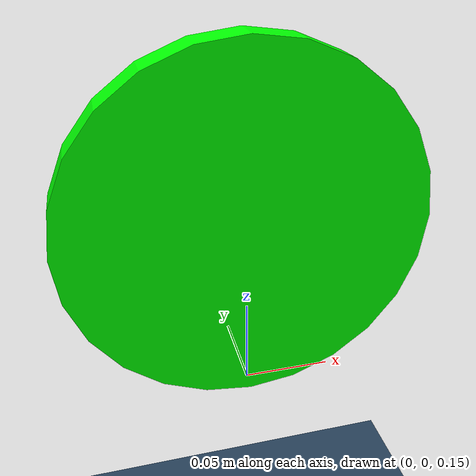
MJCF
<mujoco model="encoder_test">
	<compiler angle="radian" coordinate="local" />
	<option gravity="0 0 -9.81" magnetic="1 0 0" integrator="RK4" timestep="0.002">
		<flag contact="disable" sensornoise="enable" />
	</option>
	<visual>
		<quality shadowsize="16384" />
		<scale framelength="1.5" framewidth="0.15" />
	</visual>
	<asset>
		<texture name="grid" type="2d" builtin="checker" width="512" height="512" rgb1=".1 .2 .3" rgb2=".2 .3 .4" />
		<material name="grid" texture="grid" texrepeat="1 1" texuniform="true" reflectance=".2" />
	</asset>
	<worldbody>
		<geom name="floor" size="0 0 .05" type="plane" material="grid" condim="3" />
		<light name="spotlight" mode="targetbodycom" target="rotation_body" diffuse=".8 .8 .8" specular="0.3 0.3 0.3" pos="0 -20 4" cutoff="10" />
		<body name="rotation_body" pos="0 0 .25">
			<camera name="back" pos="-3 0 1" xyaxes="0 -1 0 1 0 2" mode="trackcom" />
			<camera name="side" pos="0 -3 1" xyaxes="1 0 0 0 1 2" mode="trackcom" />
			<joint name="rotary_joint" type="hinge" pos="0 0 0" axis="0 1 0" />
			<inertial pos="0 0 0" mass="1" diaginertia="0.1 0.1 0.1" />
			<geom type="cylinder" euler="1.5708 0 0" pos="0 0 0" size=".1 .01" rgba="0 1 0 1" mass="3" />
		</body>
	</worldbody>
	<sensor>
		<jointpos name="rotary_encoder" joint="rotary_joint" noise="0.0015" />
	</sensor>
	<actuator>
		<velocity name="rotational_velocity" joint="rotary_joint" kv="100" />
	</actuator>
</mujoco>
